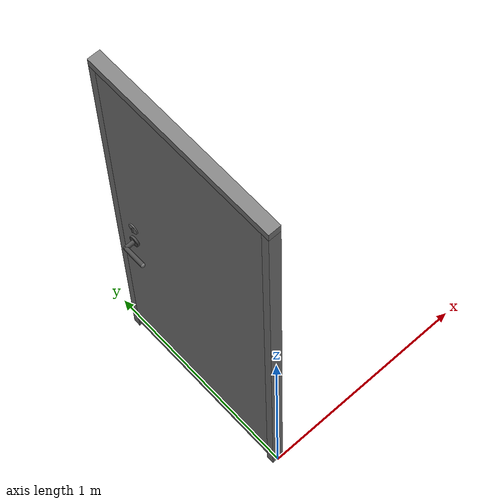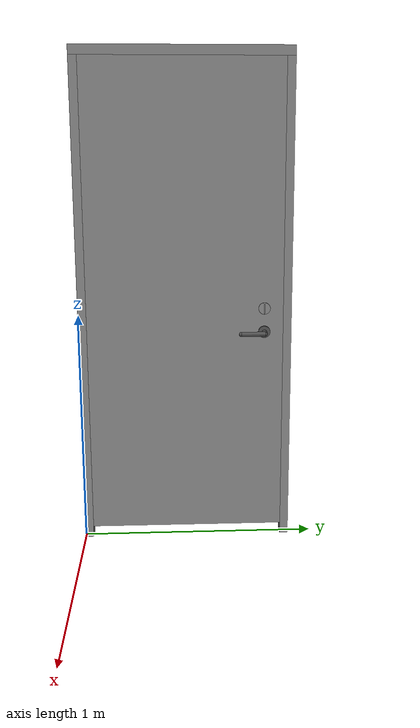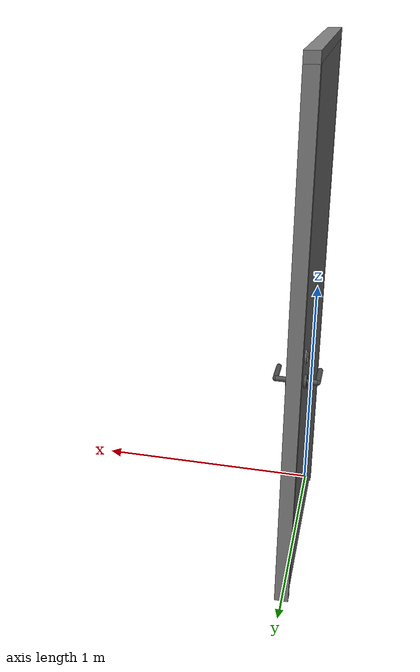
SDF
<?xml version="1.0" ?>
<sdf version="1.4">
    <model name='door_55_900_2090'>
      <link name='link'>
      <pose>0 0.45 0 0 0 0</pose>
        <inertial>
          <mass>50</mass>
          <inertia>
            <ixx>1</ixx>
            <ixy>0</ixy>
            <ixz>0</ixz>
            <iyy>1</iyy>
            <iyz>0</iyz>
            <izz>1</izz>
          </inertia>
        </inertial>
        <visual name='door'>
          <pose>0 0 1.050 0 0 0</pose>
          <geometry>
            <box>
              <size>0.055 0.830 2.0</size>
            </box>
          </geometry>
          <material>
            <!-- base_materials/wood -->
            <name>wood</name>
            <ambient>1 1 1 1</ambient>
            <diffuse>0.5 0.5 0.5 1.0</diffuse>
            <specular>0 0 0 1.0</specular>
            <shininess>12.5</shininess>
            <pbr>
              <metal>
                <albedo_map>model://base_materials/wood/textures/light_wood.png</albedo_map>
                <max_anisotropy>16</max_anisotropy>
                <metalness>0</metalness>
              </metal>
            </pbr>
          </material>
        </visual>
        <collision name='collision_door'>
          <pose>0 0 1.050 0 0 0</pose>
          <geometry>
            <box>
              <size>0.055 0.830 2.0</size>
            </box>
          </geometry>
          <max_contacts>10</max_contacts>
          <surface>
            <bounce/>
            <friction>
              <ode/>
            </friction>
            <contact>
              <ode/>
            </contact>
          </surface>
        </collision>
        <visual name='right_frame'>
          <pose>0 0.4325 1.025 0 0 0</pose>
          <geometry>
            <box>
              <size>0.055 0.035 2.050</size>
            </box>
          </geometry>
          <material>
            <!-- hsr_color/white -->
            <name>white</name>
            <ambient>1 1 1 1</ambient>
            <diffuse>0.5 0.5 0.5 1</diffuse>
            <specular>0 0 0 1</specular>
            <emissive>0 0 0 1</emissive>
            <shading>gouraud</shading>
            <receive_shadows>on</receive_shadows>
          </material>
        </visual>
        <collision name='collision_right_frame'>
          <pose>0 0.4325 1.025 0 0 0</pose>
          <geometry>
            <box>
              <size>0.055 0.035 2.050</size>
            </box>
          </geometry>
          <max_contacts>10</max_contacts>
          <surface>
            <bounce/>
            <friction>
              <ode/>
            </friction>
            <contact>
              <ode/>
            </contact>
          </surface>
        </collision>
        <visual name='left_frame'>
          <pose>0 -0.4325 1.025 0 0 0</pose>
          <geometry>
            <box>
              <size>0.055 0.035 2.050</size>
            </box>
          </geometry>
          <material>
            <!-- hsr_color/white -->
            <name>white</name>
            <ambient>1 1 1 1</ambient>
            <diffuse>0.5 0.5 0.5 1</diffuse>
            <specular>0 0 0 1</specular>
            <emissive>0 0 0 1</emissive>
            <shading>gouraud</shading>
            <receive_shadows>on</receive_shadows>
          </material>
        </visual>
        <collision name='collision_left_frame'>
          <pose>0 -0.4325 1.025 0 0 0</pose>
          <geometry>
            <box>
              <size>0.055 0.035 2.050</size>
            </box>
          </geometry>
          <max_contacts>10</max_contacts>
          <surface>
            <bounce/>
            <friction>
              <ode/>
            </friction>
            <contact>
              <ode/>
            </contact>
          </surface>
        </collision>
        <visual name='top_frame'>
          <pose>0 0 2.070 0 0 0</pose>
          <geometry>
            <box>
              <size>0.055 0.9 0.04</size>
            </box>
          </geometry>
          <material>
            <!-- hsr_color/white -->
            <name>white</name>
            <ambient>1 1 1 1</ambient>
            <diffuse>0.5 0.5 0.5 1</diffuse>
            <specular>0 0 0 1</specular>
            <emissive>0 0 0 1</emissive>
            <shading>gouraud</shading>
            <receive_shadows>on</receive_shadows>
          </material>
        </visual>
        <collision name='collision_top_frame'>
          <pose>0 0 2.070 0 0 0</pose>
          <geometry>
            <box>
              <size>0.055 0.9 0.04</size>
            </box>
          </geometry>
          <max_contacts>10</max_contacts>
          <surface>
            <bounce/>
            <friction>
              <ode/>
            </friction>
            <contact>
              <ode/>
            </contact>
          </surface>
        </collision>
        <visual name='handle_front'>
          <pose>0.0775 0.285 0.930 1.5708 0 0</pose>
          <geometry>
            <cylinder>
              <radius>0.01</radius>
              <length>0.1</length>
            </cylinder>
          </geometry>
          <material>
            <!-- hsr_color/grey -->
            <name>grey</name>
            <ambient>0.7 0.7 0.7 1</ambient>
            <diffuse>0.3 0.3 0.3 1</diffuse>
            <specular>0 0 0 1</specular>
            <emissive>0 0 0 1</emissive>
            <shading>gouraud</shading>
            <receive_shadows>on</receive_shadows>
          </material>
        </visual>
        <collision name='collision_handle_front'>
          <pose>0.0775 0.285 0.930 1.5708 0 0</pose>
          <geometry>
            <cylinder>
              <radius>0.01</radius>
              <length>0.1</length>
            </cylinder>
          </geometry>
          <max_contacts>10</max_contacts>
          <surface>
            <bounce/>
            <friction>
              <ode/>
            </friction>
            <contact>
              <ode/>
            </contact>
          </surface>
        </collision>
        <visual name='handle_back'>
          <pose>-0.0775 0.285 0.930 1.5708 0 0</pose>
          <geometry>
            <cylinder>
              <radius>0.01</radius>
              <length>0.1</length>
            </cylinder>
          </geometry>
          <material>
            <!-- hsr_color/grey -->
            <name>grey</name>
            <ambient>0.7 0.7 0.7 1</ambient>
            <diffuse>0.3 0.3 0.3 1</diffuse>
            <specular>0 0 0 1</specular>
            <emissive>0 0 0 1</emissive>
            <shading>gouraud</shading>
            <receive_shadows>on</receive_shadows>
          </material>
        </visual>
        <collision name='collision_handle_back'>
          <pose>-0.0775 0.285 0.930 1.5708 0 0</pose>
          <geometry>
            <cylinder>
              <radius>0.01</radius>
              <length>0.1</length>
            </cylinder>
          </geometry>
          <max_contacts>10</max_contacts>
          <surface>
            <bounce/>
            <friction>
              <ode/>
            </friction>
            <contact>
              <ode/>
            </contact>
          </surface>
        </collision>
        <visual name='handle_center1'>
          <pose>0 0.335 0.930 0 1.5708 0</pose>
          <geometry>
            <cylinder>
              <radius>0.01</radius>
              <length>0.155</length>
            </cylinder>
          </geometry>
          <material>
            <!-- hsr_color/grey -->
            <name>grey</name>
            <ambient>0.7 0.7 0.7 1</ambient>
            <diffuse>0.3 0.3 0.3 1</diffuse>
            <specular>0 0 0 1</specular>
            <emissive>0 0 0 1</emissive>
            <shading>gouraud</shading>
            <receive_shadows>on</receive_shadows>
          </material>
        </visual>
        <collision name='collision_center1'>
          <pose>0 0.335 0.930 0 1.5708 0</pose>
          <geometry>
            <cylinder>
              <radius>0.01</radius>
              <length>0.155</length>
            </cylinder>
          </geometry>
          <max_contacts>10</max_contacts>
          <surface>
            <bounce/>
            <friction>
              <ode/>
            </friction>
            <contact>
              <ode/>
            </contact>
          </surface>
        </collision>
        <visual name='handle_center2'>
          <pose>0 0.335 0.930 0 1.5708 0</pose>
          <geometry>
            <cylinder>
              <radius>0.025</radius>
              <length>0.075</length>
            </cylinder>
          </geometry>
          <material>
            <!-- hsr_color/grey -->
            <name>grey</name>
            <ambient>0.7 0.7 0.7 1</ambient>
            <diffuse>0.3 0.3 0.3 1</diffuse>
            <specular>0 0 0 1</specular>
            <emissive>0 0 0 1</emissive>
            <shading>gouraud</shading>
            <receive_shadows>on</receive_shadows>
          </material>
        </visual>
        <collision name='collision_center3'>
          <pose>0 0.335 0.930 0 1.5708 0</pose>
          <geometry>
            <cylinder>
              <radius>0.025</radius>
              <length>0.075</length>
            </cylinder>
          </geometry>
          <max_contacts>10</max_contacts>
          <surface>
            <bounce/>
            <friction>
              <ode/>
            </friction>
            <contact>
              <ode/>
            </contact>
          </surface>
        </collision>
        <visual name='handle_front_right_corner'>
          <pose>0.0775 0.335 0.930 0 0 0</pose>
          <geometry>
            <sphere>
              <radius>0.01</radius>
            </sphere>
          </geometry>
          <material>
            <!-- hsr_color/grey -->
            <name>grey</name>
            <ambient>0.7 0.7 0.7 1</ambient>
            <diffuse>0.3 0.3 0.3 1</diffuse>
            <specular>0 0 0 1</specular>
            <emissive>0 0 0 1</emissive>
            <shading>gouraud</shading>
            <receive_shadows>on</receive_shadows>
          </material>
        </visual>
        <collision name='collision_handle_front_right_corner'>
          <pose>0.0775 0.335 0.930 0 0 0</pose>
          <geometry>
            <sphere>
              <radius>0.01</radius>
            </sphere>
          </geometry>
          <max_contacts>10</max_contacts>
          <surface>
            <bounce/>
            <friction>
              <ode/>
            </friction>
            <contact>
              <ode/>
            </contact>
          </surface>
        </collision>
        <visual name='handle_front_left_corner'>
          <pose>0.0775 0.235 0.930 0 0 0</pose>
          <geometry>
            <sphere>
              <radius>0.01</radius>
            </sphere>
          </geometry>
          <material>
            <!-- hsr_color/grey -->
            <name>grey</name>
            <ambient>0.7 0.7 0.7 1</ambient>
            <diffuse>0.3 0.3 0.3 1</diffuse>
            <specular>0 0 0 1</specular>
            <emissive>0 0 0 1</emissive>
            <shading>gouraud</shading>
            <receive_shadows>on</receive_shadows>
          </material>
        </visual>
        <collision name='collision_handle_front_left_corner'>
          <pose>0.0775 0.235 0.930 0 0 0</pose>
          <geometry>
            <sphere>
              <radius>0.01</radius>
            </sphere>
          </geometry>
          <max_contacts>10</max_contacts>
          <surface>
            <bounce/>
            <friction>
              <ode/>
            </friction>
            <contact>
              <ode/>
            </contact>
          </surface>
        </collision>
        <visual name='handle_back_right_corner'>
          <pose>-0.0775 0.335 0.930 0 0 0</pose>
          <geometry>
            <sphere>
              <radius>0.01</radius>
            </sphere>
          </geometry>
          <material>
            <!-- hsr_color/grey -->
            <name>grey</name>
            <ambient>0.7 0.7 0.7 1</ambient>
            <diffuse>0.3 0.3 0.3 1</diffuse>
            <specular>0 0 0 1</specular>
            <emissive>0 0 0 1</emissive>
            <shading>gouraud</shading>
            <receive_shadows>on</receive_shadows>
          </material>
        </visual>
        <collision name='collision_handle_back_right_corner'>
          <pose>-0.0775 0.335 0.930 0 0 0</pose>
          <geometry>
            <sphere>
              <radius>0.01</radius>
            </sphere>
          </geometry>
          <max_contacts>10</max_contacts>
          <surface>
            <bounce/>
            <friction>
              <ode/>
            </friction>
            <contact>
              <ode/>
            </contact>
          </surface>
        </collision>
        <visual name='handle_back_left_corner'>
          <pose>-0.0775 0.235 0.930 0 0 0</pose>
          <geometry>
            <sphere>
              <radius>0.01</radius>
            </sphere>
          </geometry>
          <material>
            <!-- hsr_color/white -->
            <name>white</name>
            <ambient>1 1 1 1</ambient>
            <diffuse>0.5 0.5 0.5 1</diffuse>
            <specular>0 0 0 1</specular>
            <emissive>0 0 0 1</emissive>
            <shading>gouraud</shading>
            <receive_shadows>on</receive_shadows>
          </material>
        </visual>
        <collision name='collision_handle_back_left_corner'>
          <pose>-0.0775 0.235 0.930 0 0 0</pose>
          <geometry>
            <sphere>
              <radius>0.01</radius>
            </sphere>
          </geometry>
          <max_contacts>10</max_contacts>
          <surface>
            <bounce/>
            <friction>
              <ode/>
            </friction>
            <contact>
              <ode/>
            </contact>
          </surface>
        </collision>
        <visual name='handle_lock1'>
          <pose>0 0.335 1.03 0 0 0</pose>
          <geometry>
            <box>
              <size>0.075 0.005 0.04</size>
            </box>
          </geometry>
          <material>
            <!-- hsr_color/white -->
            <name>white</name>
            <ambient>1 1 1 1</ambient>
            <diffuse>0.5 0.5 0.5 1</diffuse>
            <specular>0 0 0 1</specular>
            <emissive>0 0 0 1</emissive>
            <shading>gouraud</shading>
            <receive_shadows>on</receive_shadows>
          </material>
        </visual>
        <collision name='collision_handle_lock1'>
          <pose>0 0.335 1.03 0 0 0</pose>
          <geometry>
            <box>
              <size>0.075 0.005 0.04</size>
            </box>
          </geometry>
          <max_contacts>10</max_contacts>
          <surface>
            <bounce/>
            <friction>
              <ode/>
            </friction>
            <contact>
              <ode/>
            </contact>
          </surface>
        </collision>
        <visual name='handle_lock2'>
          <pose>0 0.335 1.03 0 1.5708 0</pose>
          <geometry>
            <cylinder>
              <radius>0.025</radius>
              <length>0.065</length>
            </cylinder>
          </geometry>
          <material>
            <!-- hsr_color/white -->
            <name>white</name>
            <ambient>1 1 1 1</ambient>
            <diffuse>0.5 0.5 0.5 1</diffuse>
            <specular>0 0 0 1</specular>
            <emissive>0 0 0 1</emissive>
            <shading>gouraud</shading>
            <receive_shadows>on</receive_shadows>
          </material>
        </visual>
        <collision name='collision_handle_lock2'>
          <pose>0 0.335 1.03 0 1.5708 0</pose>
          <geometry>
            <cylinder>
              <radius>0.025</radius>
              <length>0.065</length>
            </cylinder>
          </geometry>
          <max_contacts>10</max_contacts>
          <surface>
            <bounce/>
            <friction>
              <ode/>
            </friction>
            <contact>
              <ode/>
            </contact>
          </surface>
        </collision>
        <velocity_decay>
          <linear>0</linear>
          <angular>0</angular>
        </velocity_decay>
        <self_collide>0</self_collide>
        <kinematic>0</kinematic>
        <gravity>1</gravity>
      </link>
      <static>1</static>
    </model>
</sdf>
